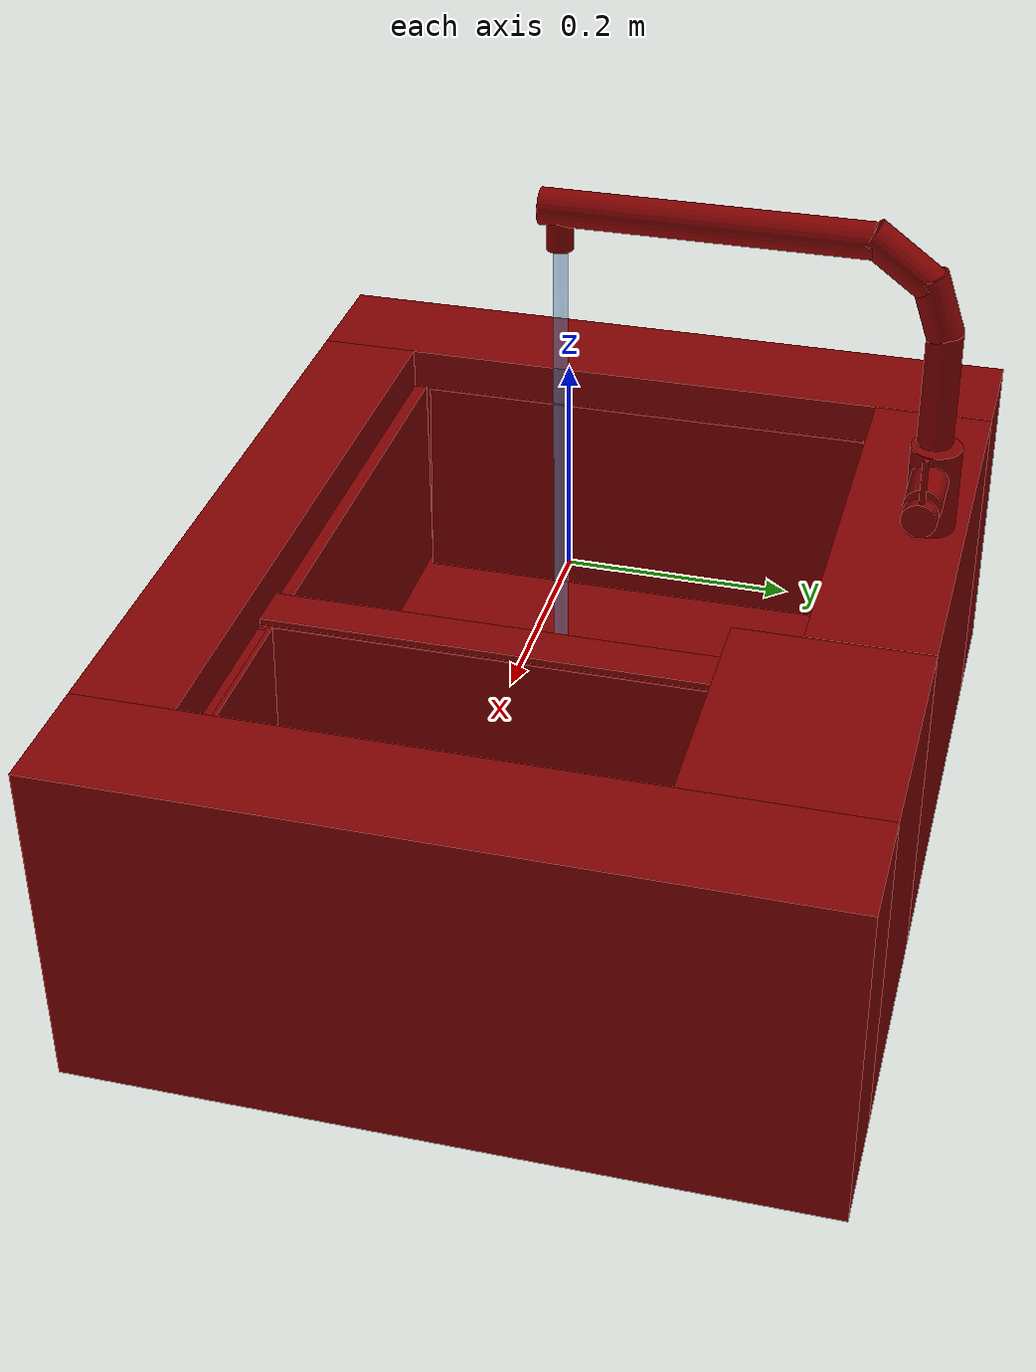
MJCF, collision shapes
<?xml version='1.0' encoding='UTF-8'?>
<mujoco model="model">
  <option timestep="0.002" gravity="0.0 0.0 -9.81"/>
  <compiler angle="radian"/>
  <asset>
    <mesh file="visuals/handle.obj" name="handle_vis"/>
    <mesh file="visuals/Body001.obj" name="Body001_vis"/>
    <mesh file="visuals/spout.obj" name="spout_vis"/>
    <texture file="visuals/T_BC001.png" name="Body001_material" type="2d"/>
    <material name="Body001_material" rgba="1 1 1 1.0" texture="Body001_material" shininess="0.1" specular="0.9"/>
    <texture file="visuals/T_BC001.png" name="handle_material" type="2d"/>
    <material name="handle_material" rgba="1 1 1 1.0" texture="handle_material" shininess="0.1" specular="0.9"/>
    <texture file="visuals/T_BC001.png" name="spout_material" type="2d"/>
    <material name="spout_material" rgba="1 1 1 1.0" texture="spout_material" shininess="0.1" specular="0.9"/>
  </asset>
  <default>
    <default class="visual">
      <geom conaffinity="0" contype="0" group="1" type="mesh"/>
    </default>
    <default class="collision">
      <geom group="0" rgba="0.5 0 0 0.5" solimp="0.998 0.998 0.001" solref="0.001 2"/>
    </default>
    <default class="spawn">
      <geom group="0" rgba="1 1 1 0.5" contype="0" conaffinity="0"/>
      <site group="0" rgba="1 1 1 0.5"/>
    </default>
    <default class="region">
      <geom group="1" conaffinity="0" contype="0" rgba="0 1 0 0"/>
    </default>
  </default>
  <worldbody>
    <body>
      <body name="object">
        <geom mesh="Body001_vis" type="mesh" solimp="0.998 0.998 0.001" solref="0.001 1" friction="0.95 0.3 0.1" class="visual" material="Body001_material"/>
        <geom class="collision" type="box" pos="-0.38713416 -0.00000000 -0.14692880" size="0.05620851740241051 0.3486928939819336 0.16421827673912048" quat="1.0 0.0 0.0 0.0"/>
        <geom class="collision" type="box" pos="0.38577816 0.00000003 -0.14692868" size="0.05756451189517975 0.3486928641796112 0.16421827673912048" quat="1.0 0.0 0.0 0.0"/>
        <geom class="collision" type="box" pos="-0.00166877 -0.30077460 -0.14692874" size="0.330101877450943 0.047918252646923065 0.1642182171344757" quat="1.0 0.0 0.0 0.0"/>
        <geom class="collision" type="box" pos="0.21292824 0.25887269 -0.14692874" size="0.11904565244913101 0.08982021361589432 0.1642182171344757" quat="1.0 0.0 0.0 0.0"/>
        <geom class="collision" type="box" pos="-0.11878324 0.29070181 -0.14692874" size="0.21166878938674927 0.05799110233783722 0.1642182171344757" quat="1.0 0.0 0.0 0.0"/>
        <geom class="collision" type="box" pos="-0.11438625 0.23510841 -0.16723975" size="0.21606576442718506 0.009795859456062317 0.14390721917152405" quat="1.0 0.0 0.0 0.0"/>
        <geom class="collision" type="box" pos="-0.00226764 -0.25008621 -0.16723975" size="0.3336304724216461 0.009662470780313015 0.14390721917152405" quat="1.0 0.0 0.0 0.0"/>
        <geom class="collision" type="box" pos="-0.32613027 -0.00570134 -0.12803630" size="0.00564580736681819 0.2295820564031601 0.10468222945928574" quat="0.9994223117828369 6.715295734677814e-16 -0.033986374735832214 -4.5663690606545515e-09"/>
        <geom class="collision" type="box" pos="0.09389205 -0.00570134 -0.12586908" size="0.00564580736681819 0.2295820564031601 0.10468222945928574" quat="0.9994223117828369 6.116466204979481e-16 0.03398637846112251 4.566369504743761e-09"/>
        <geom class="collision" type="box" pos="0.11537549 -0.04141731 -0.01885087" size="0.021492905914783478 0.21219207346439362 0.0031190291047096252" quat="1.0 0.0 0.0 0.0"/>
        <geom class="collision" type="box" pos="0.14253481 -0.04141731 -0.11034733" size="0.0014873591717332602 0.21219207346439362 0.08770085126161575" quat="0.9994829893112183 0.0 -0.032152947038412094 0.0"/>
        <geom class="collision" type="box" pos="0.32389212 -0.04141731 -0.10235351" size="0.0035827455576509237 0.21219207346439362 0.09578000009059906" quat="0.9994829893112183 0.0 0.032152947038412094 0.0"/>
        <geom class="collision" type="box" pos="0.23513186 -0.25150981 -0.10876303" size="0.09239033609628677 0.006735979113727808 0.08551596105098724" quat="1.0 0.0 0.0 0.0"/>
        <geom class="collision" type="box" pos="0.23513186 0.16245364 -0.10876303" size="0.09239033609628677 0.004911359399557114 0.08543051034212112" quat="0.9999428987503052 -0.010686147958040237 -0.0 0.0"/>
        <geom class="collision" type="box" pos="-0.00449044 0.00117473 -0.27115671" size="0.3336320221424103 0.24360382556915283 0.03999025747179985" quat="1.0 0.0 0.0 0.0"/>
        <geom class="collision" type="cylinder" pos="-0.11893363 0.31380255 0.05886773" size="0.023981241509318352 0.04181399941444397" quat="1.0 0.0 0.0 0.0"/>
        <geom class="collision" type="box" pos="0.32898355 -0.03500630 -0.11000197" size="0.0025114272721111774 0.20634864270687103 0.09037144482135773" quat="1.0 0.0 0.0 0.0"/>
        <geom class="collision" type="box" pos="-0.33379722 0.00182440 -0.12774302" size="0.0025114272721111774 0.2431793361902237 0.10811250656843185" quat="1.0 0.0 0.0 0.0"/>
        <geom class="collision" type="box" pos="0.22166531 0.18215225 -0.11037405" size="0.10982964187860489 0.013963666744530201 0.09279049932956696" quat="1.0 0.0 0.0 0.0"/>
        <geom class="collision" type="box" pos="0.11481552 0.20840111 -0.13780342" size="0.020346248522400856 0.035329483449459076 0.09865998476743698" quat="1.0 0.0 0.0 0.0"/>
        <geom class="collision" type="cylinder" pos="-0.07945859 0.31145889 0.07454114" size="0.017730290070176125 0.027539391070604324" quat="0.7071068286895752 -0.0 0.7071067690849304 0.0"/>
        <geom class="collision" type="box" pos="0.23294400 -0.02811070 -0.25410859" size="0.09424905478954315 0.2188708633184433 0.05703837051987648" quat="1.0 0.0 0.0 0.0"/>
        <body name="handle">
          <joint axis="1.0 0.0 0.0" pos="-0.03947191 0.31183887 0.07443295" limited="true" name="handle_temp_joint" type="hinge" range="-0.7853981633974483 0.7853981633974483" damping="0.5" frictionloss="1" armature="2"/>
          <joint axis="0.0 1.0 0.0" pos="-0.03947191 0.31183887 0.07443295" limited="true" name="handle_joint" type="hinge" range="0 0.5" damping="0.5" frictionloss="1" armature="2"/>
          <geom mesh="handle_vis" type="mesh" solimp="0.998 0.998 0.001" solref="0.001 1" friction="0.95 0.3 0.1" class="visual" material="handle_material"/>
          <geom class="collision" type="cylinder" pos="-0.03285957 0.31145889 0.07454114" size="0.016495784744620323 0.0057494016364216805" quat="0.7071068286895752 -0.0 0.7071067690849304 0.0"/>
          <geom name="handle_main" class="collision" type="cylinder" pos="-0.03276946 0.31234125 0.11218280" size="0.0029408487025648355 0.02190561778843403" quat="1.0 0.0 0.0 0.0"/>
        </body>
        <body name="spout">
          <joint axis="0.0 0.0 1.0" pos="-0.11918976 0.31220255 0.16685310" limited="true" name="spout_joint" range="-0.5235987755982988 1.0471975511965976" type="hinge" damping="10"/>
          <site type="cylinder" rgba="0.5 0.75 1 0.5" size="0.006951053626835346 0.24638749659061432" pos="-0.11875695 -0.03892186 0.01070592" name="water"/>
          <geom mesh="spout_vis" type="mesh" solimp="0.998 0.998 0.001" solref="0.001 1" friction="0.95 0.3 0.1" class="visual" material="spout_material"/>
          <geom class="collision" type="cylinder" pos="-0.11910056 0.09315629 0.29422803" size="0.01676228456199169 0.14992904663085938" quat="0.7071068286895752 0.7071067690849304 -1.5700924318127872e-16 -5.9269340452702814e-24" name="spout_main"/>
          <geom class="collision" type="cylinder" pos="-0.11927558 0.31138814 0.15939631" size="0.01676228456199169 0.05516040325164795" quat="1.0 0.0 0.0 0.0"/>
          <geom class="collision" type="cylinder" pos="-0.11927558 -0.03920641 0.26954214" size="0.012737974524497986 0.014642545022070408" quat="1.0 0.0 0.0 0.0"/>
          <geom class="collision" type="cylinder" pos="-0.11927558 0.30205677 0.24007806" size="0.01721225492656231 0.028955737128853798" quat="0.9866579174995422 0.16280728578567505 -1.2685264679753908e-16 3.683989478709043e-17"/>
          <geom class="collision" type="cylinder" pos="-0.11927558 0.26760275 0.27919348" size="0.01721225492656231 0.035134073346853256" quat="0.8919404745101929 0.452152818441391 -6.613581636091354e-17 -1.3916068072202186e-17"/>
        </body>
        <geom class="region" name="reg_basin_left" type="box" pos="-0.11659301 -0.007400859999999995 -0.107210435" size="0.18733696 0.22386561 0.119596505"/>
        <geom class="region" name="reg_basin_right" type="box" pos="0.234360385 -0.04080072 -0.09073863" size="0.07417529499999999 0.18928527 0.10310156999999999"/>
        <geom class="region" name="reg_main" type="box" pos="0.0 -4.999999997368221e-09 -0.14692873999999997" size="0.44434269 0.349692895 0.16521822"/>
      </body>
    </body>
  </worldbody>
  <actuator>
    <motor name="handle_joint_actuator" joint="handle_joint" gear="10"/>
    <motor name="handle_temp_joint_actuator" joint="handle_temp_joint" gear="10"/>
    <motor name="spout_joint_actuator" joint="spout_joint" gear="10"/>
  </actuator>
</mujoco>
